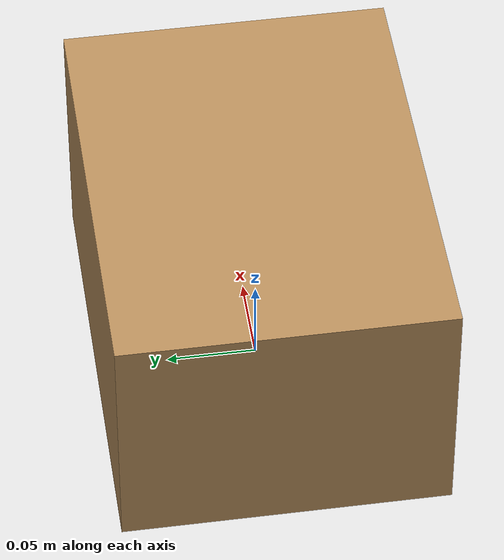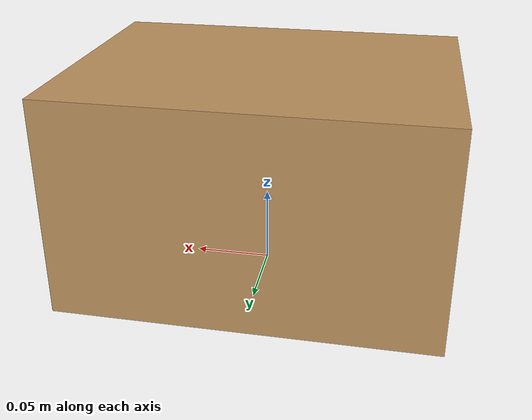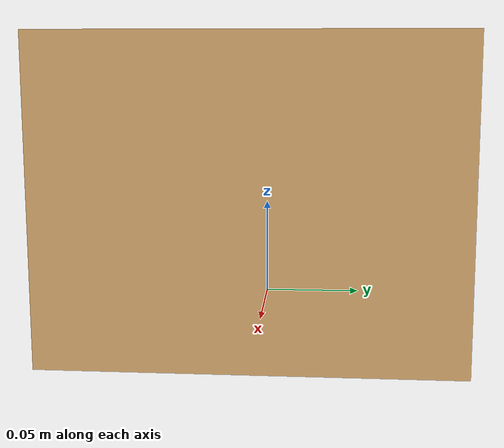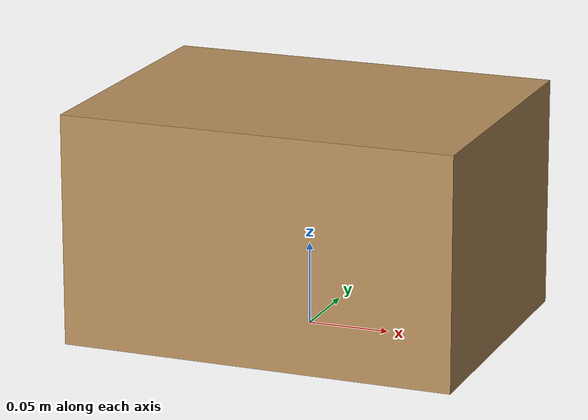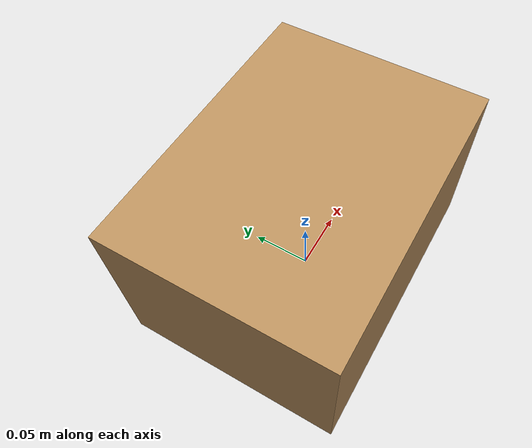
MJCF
<mujoco model="box_parcel">
  <!-- Cardboard parcel 240 x 180 x 140 mm, 0.6 kg. High friction (corrugated board).
       Origin at the bottom centre. Self-authored primitive (CC0). -->
  <asset>
    <material name="mat" rgba="0.72 0.56 0.36 1"/>
  </asset>
  <worldbody>
    <body name="box_parcel">
      <freejoint/>
      <geom name="body" type="box" size="0.12 0.09 0.07" pos="0 0 0.07" mass="0.6"
            material="mat" condim="4" friction="1.1 0.02 0.0005" solimp="0.95 0.99 0.001" solref="0.008 1"/>
    </body>
  </worldbody>
</mujoco>
